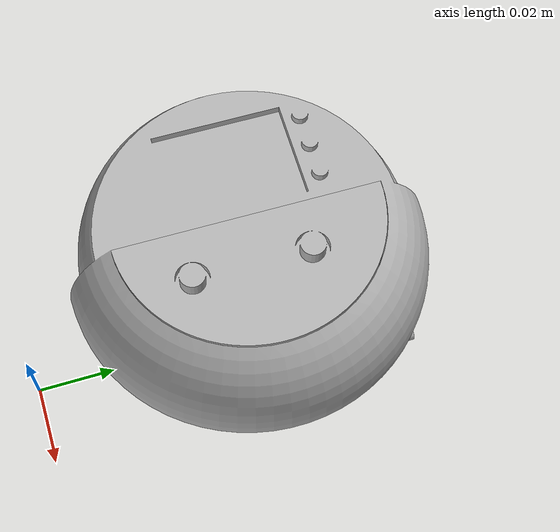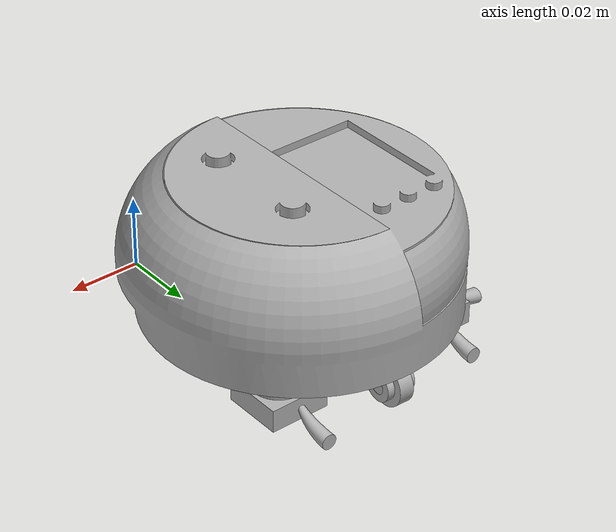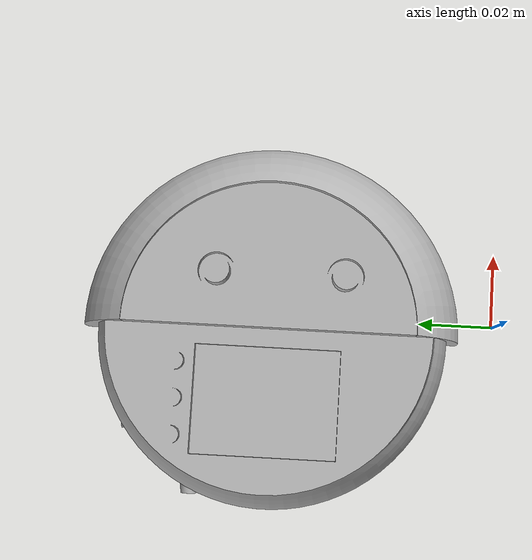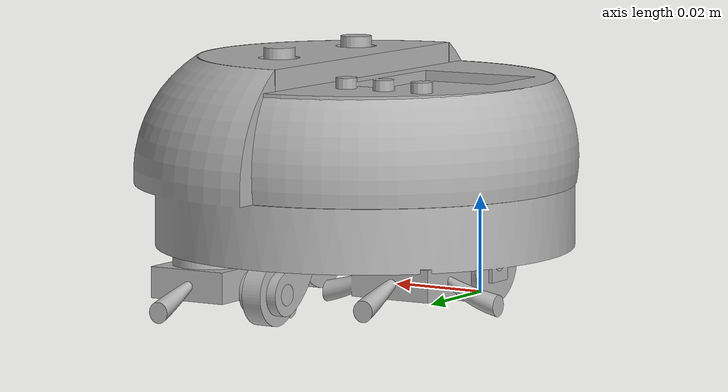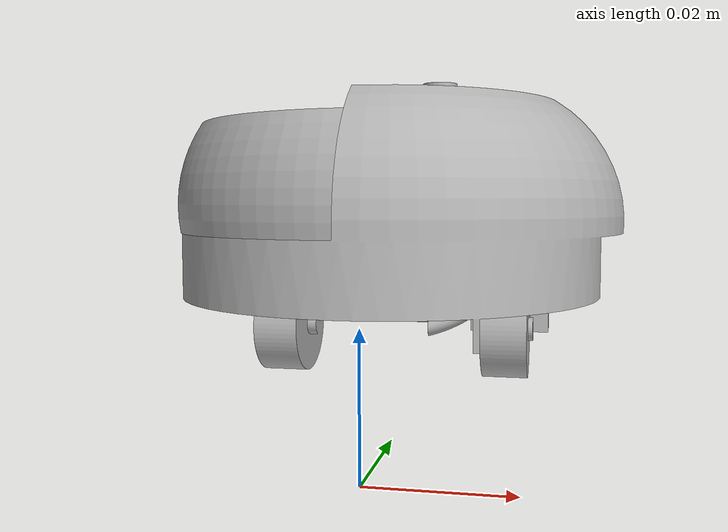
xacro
<?xml version="1.0" ?>
<robot name="automated" xmlns:xacro="http://www.ros.org/wiki/xacro">

<xacro:include filename="$(find automated_description)/urdf/materials.xacro" />
<xacro:include filename="$(find automated_description)/urdf/automated.trans" />
<xacro:include filename="$(find automated_description)/urdf/automated.gazebo" />
<link name="base_link">
  <inertial>
    <origin rpy="0 0 0" xyz="-0.002260090657862094 0.05793365430294957 0.030621354736393203"/>
    <mass value="0.6770784513234185"/>
    <inertia ixx="0.000389" ixy="-6e-06" ixz="-2.3e-05" iyy="0.000371" iyz="-6e-06" izz="0.00064"/>
  </inertial>
  <visual>
    <origin rpy="0 0 0" xyz="0 0 0"/>
    <geometry>
      <mesh filename="package://automated_description/meshes/base_link.stl" scale="0.001 0.001 0.001"/>
    </geometry>
    <material name="silver"/>
  </visual>
  <collision>
    <origin rpy="0 0 0" xyz="0 0 0"/>
    <geometry>
      <mesh filename="package://automated_description/meshes/base_link.stl" scale="0.001 0.001 0.001"/>
    </geometry>
  </collision>
</link>

<link name="Component58_1_1_1_1">
  <inertial>
    <origin rpy="0 0 0" xyz="4.780941092805916e-05 0.001919665752716973 -0.00995865257547859"/>
    <mass value="0.004210048380162323"/>
    <inertia ixx="0.0" ixy="-0.0" ixz="0.0" iyy="0.0" iyz="0.0" izz="0.0"/>
  </inertial>
  <visual>
    <origin rpy="0 0 0" xyz="0.007764 -0.086809 -0.0276"/>
    <geometry>
      <mesh filename="package://automated_description/meshes/Component58_1_1_1_1.stl" scale="0.001 0.001 0.001"/>
    </geometry>
    <material name="silver"/>
  </visual>
  <collision>
    <origin rpy="0 0 0" xyz="0.007764 -0.086809 -0.0276"/>
    <geometry>
      <mesh filename="package://automated_description/meshes/Component58_1_1_1_1.stl" scale="0.001 0.001 0.001"/>
    </geometry>
  </collision>
</link>

<link name="Component59_1_1_1_1">
  <inertial>
    <origin rpy="0 0 0" xyz="0.0039990430726547935 -0.0001005646685130479 1.8572263411377465e-07"/>
    <mass value="0.003945840372937571"/>
    <inertia ixx="0.0" ixy="-0.0" ixz="-0.0" iyy="0.0" iyz="0.0" izz="0.0"/>
  </inertial>
  <visual>
    <origin rpy="0 0 0" xyz="0.011615 -0.092815 -0.01295"/>
    <geometry>
      <mesh filename="package://automated_description/meshes/Component59_1_1_1_1.stl" scale="0.001 0.001 0.001"/>
    </geometry>
    <material name="silver"/>
  </visual>
  <collision>
    <origin rpy="0 0 0" xyz="0.011615 -0.092815 -0.01295"/>
    <geometry>
      <mesh filename="package://automated_description/meshes/Component59_1_1_1_1.stl" scale="0.001 0.001 0.001"/>
    </geometry>
  </collision>
</link>

<link name="Component65_1_1_1_1">
  <inertial>
    <origin rpy="0 0 0" xyz="0.005370003801277046 6.258215612398033e-10 2.0861626141843725e-10"/>
    <mass value="0.013360062663068094"/>
    <inertia ixx="0.0" ixy="-0.0" ixz="0.0" iyy="0.0" iyz="0.0" izz="0.0"/>
  </inertial>
  <visual>
    <origin rpy="0 0 0" xyz="-0.010236 -0.042 -0.014"/>
    <geometry>
      <mesh filename="package://automated_description/meshes/Component65_1_1_1_1.stl" scale="0.001 0.001 0.001"/>
    </geometry>
    <material name="silver"/>
  </visual>
  <collision>
    <origin rpy="0 0 0" xyz="-0.010236 -0.042 -0.014"/>
    <geometry>
      <mesh filename="package://automated_description/meshes/Component65_1_1_1_1.stl" scale="0.001 0.001 0.001"/>
    </geometry>
  </collision>
</link>

<link name="Component64_1_1_1_1">
  <inertial>
    <origin rpy="0 0 0" xyz="0.004629072990882242 1.7943237050344063e-07 -1.214306433183765e-17"/>
    <mass value="0.013360062663068028"/>
    <inertia ixx="0.0" ixy="0.0" ixz="0.0" iyy="0.0" iyz="-0.0" izz="0.0"/>
  </inertial>
  <visual>
    <origin rpy="0 0 0" xyz="0.027764 -0.041809 -0.014"/>
    <geometry>
      <mesh filename="package://automated_description/meshes/Component64_1_1_1_1.stl" scale="0.001 0.001 0.001"/>
    </geometry>
    <material name="silver"/>
  </visual>
  <collision>
    <origin rpy="0 0 0" xyz="0.027764 -0.041809 -0.014"/>
    <geometry>
      <mesh filename="package://automated_description/meshes/Component64_1_1_1_1.stl" scale="0.001 0.001 0.001"/>
    </geometry>
  </collision>
</link>

<link name="Component68_1_1_1_1">
  <inertial>
    <origin rpy="0 0 0" xyz="-1.4728177826130867e-05 6.969358953320959e-06 -0.008054423476504292"/>
    <mass value="0.023480762920581627"/>
    <inertia ixx="1e-06" ixy="0.0" ixz="-0.0" iyy="1e-06" iyz="0.0" izz="1e-06"/>
  </inertial>
  <visual>
    <origin rpy="0 0 0" xyz="0.029764 -0.078809 -0.026"/>
    <geometry>
      <mesh filename="package://automated_description/meshes/Component68_1_1_1_1.stl" scale="0.001 0.001 0.001"/>
    </geometry>
    <material name="silver"/>
  </visual>
  <collision>
    <origin rpy="0 0 0" xyz="0.029764 -0.078809 -0.026"/>
    <geometry>
      <mesh filename="package://automated_description/meshes/Component68_1_1_1_1.stl" scale="0.001 0.001 0.001"/>
    </geometry>
  </collision>
</link>

<link name="Component69_1_1_1_1">
  <inertial>
    <origin rpy="0 0 0" xyz="-0.0004254489576173866 5.723375892774385e-06 -0.007913406502636878"/>
    <mass value="0.02280255927051666"/>
    <inertia ixx="1e-06" ixy="0.0" ixz="-0.0" iyy="1e-06" iyz="0.0" izz="1e-06"/>
  </inertial>
  <visual>
    <origin rpy="0 0 0" xyz="-0.014596 -0.078809 -0.022"/>
    <geometry>
      <mesh filename="package://automated_description/meshes/Component69_1_1_1_1.stl" scale="0.001 0.001 0.001"/>
    </geometry>
    <material name="silver"/>
  </visual>
  <collision>
    <origin rpy="0 0 0" xyz="-0.014596 -0.078809 -0.022"/>
    <geometry>
      <mesh filename="package://automated_description/meshes/Component69_1_1_1_1.stl" scale="0.001 0.001 0.001"/>
    </geometry>
  </collision>
</link>

<link name="Component67_1_1_1_1">
  <inertial>
    <origin rpy="0 0 0" xyz="-0.02416053068101002 -0.03899982056769254 -0.003976280144688531"/>
    <mass value="0.06255119221528634"/>
    <inertia ixx="4.7e-05" ixy="-0.0" ixz="-0.0" iyy="1e-05" iyz="-0.0" izz="5.4e-05"/>
  </inertial>
  <visual>
    <origin rpy="0 0 0" xyz="0.007764 -0.097409 -0.042"/>
    <geometry>
      <mesh filename="package://automated_description/meshes/Component67_1_1_1_1.stl" scale="0.001 0.001 0.001"/>
    </geometry>
    <material name="silver"/>
  </visual>
  <collision>
    <origin rpy="0 0 0" xyz="0.007764 -0.097409 -0.042"/>
    <geometry>
      <mesh filename="package://automated_description/meshes/Component67_1_1_1_1.stl" scale="0.001 0.001 0.001"/>
    </geometry>
  </collision>
</link>

<link name="Component66_1_1_1_1">
  <inertial>
    <origin rpy="0 0 0" xyz="0.013396446468846787 -8.032706838141668e-06 0.002039590369300376"/>
    <mass value="0.04983333627138506"/>
    <inertia ixx="1.3e-05" ixy="-0.0" ixz="0.0" iyy="4e-06" iyz="0.0" izz="1.6e-05"/>
  </inertial>
  <visual>
    <origin rpy="0 0 0" xyz="0.007764 -0.058809 -0.05"/>
    <geometry>
      <mesh filename="package://automated_description/meshes/Component66_1_1_1_1.stl" scale="0.001 0.001 0.001"/>
    </geometry>
    <material name="silver"/>
  </visual>
  <collision>
    <origin rpy="0 0 0" xyz="0.007764 -0.058809 -0.05"/>
    <geometry>
      <mesh filename="package://automated_description/meshes/Component66_1_1_1_1.stl" scale="0.001 0.001 0.001"/>
    </geometry>
  </collision>
</link>

<joint name="Rev17" type="continuous">
  <origin rpy="0 0 0" xyz="-0.007764 0.086809 0.0276"/>
  <parent link="base_link"/>
  <child link="Component58_1_1_1_1"/>
  <axis xyz="0.0 0.0 -1.0"/>
</joint>

<joint name="Rev18" type="continuous">
  <origin rpy="0 0 0" xyz="-0.003851 0.006006 -0.01465"/>
  <parent link="Component58_1_1_1_1"/>
  <child link="Component59_1_1_1_1"/>
  <axis xyz="-0.999684 0.02514 0.0"/>
</joint>

<joint name="Rev19" type="continuous">
  <origin rpy="0 0 0" xyz="0.010236 0.042 0.014"/>
  <parent link="base_link"/>
  <child link="Component65_1_1_1_1"/>
  <axis xyz="-1.0 -0.0 -0.0"/>
</joint>

<joint name="Rev20" type="continuous">
  <origin rpy="0 0 0" xyz="-0.027764 0.041809 0.014"/>
  <parent link="base_link"/>
  <child link="Component64_1_1_1_1"/>
  <axis xyz="-1.0 -0.0 -0.0"/>
</joint>

<joint name="Rev21" type="continuous">
  <origin rpy="0 0 0" xyz="-0.029764 0.078809 0.026"/>
  <parent link="base_link"/>
  <child link="Component68_1_1_1_1"/>
  <axis xyz="0.0 0.0 -1.0"/>
</joint>

<joint name="Rev22" type="continuous">
  <origin rpy="0 0 0" xyz="0.014596 0.078809 0.022"/>
  <parent link="base_link"/>
  <child link="Component69_1_1_1_1"/>
  <axis xyz="0.0 0.0 -1.0"/>
</joint>

<joint name="Rigid23" type="fixed">
  <origin rpy="0 0 0" xyz="-0.007764 0.097409 0.042"/>
  <parent link="base_link"/>
  <child link="Component67_1_1_1_1"/>
</joint>

<joint name="Rigid24" type="fixed">
  <origin rpy="0 0 0" xyz="-0.007764 0.058809 0.05"/>
  <parent link="base_link"/>
  <child link="Component66_1_1_1_1"/>
</joint>

</robot>

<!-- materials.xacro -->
<robot name="automated" xmlns:xacro="http://www.ros.org/wiki/xacro" >

<material name="silver">
  <color rgba="0.700 0.700 0.700 1.000"/>
</material>

</robot>

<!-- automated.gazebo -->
<robot name="automated" xmlns:xacro="http://www.ros.org/wiki/xacro" >

<xacro:property name="body_color" value="Gazebo/Silver" />

<gazebo>
  <plugin filename="libgazebo_ros_control.so" name="control"/>
</gazebo>
<gazebo reference="base_link">
  <material>${body_color}</material>
  <mu1>0.2</mu1>
  <mu2>0.2</mu2>
  <selfCollide>true</selfCollide>
  <gravity>true</gravity>
</gazebo>

<gazebo reference="Component58_1_1_1_1">
  <material>${body_color}</material>
  <mu1>0.2</mu1>
  <mu2>0.2</mu2>
  <selfCollide>true</selfCollide>
</gazebo>

<gazebo reference="Component59_1_1_1_1">
  <material>${body_color}</material>
  <mu1>0.2</mu1>
  <mu2>0.2</mu2>
  <selfCollide>true</selfCollide>
</gazebo>

<gazebo reference="Component65_1_1_1_1">
  <material>${body_color}</material>
  <mu1>0.2</mu1>
  <mu2>0.2</mu2>
  <selfCollide>true</selfCollide>
</gazebo>

<gazebo reference="Component64_1_1_1_1">
  <material>${body_color}</material>
  <mu1>0.2</mu1>
  <mu2>0.2</mu2>
  <selfCollide>true</selfCollide>
</gazebo>

<gazebo reference="Component68_1_1_1_1">
  <material>${body_color}</material>
  <mu1>0.2</mu1>
  <mu2>0.2</mu2>
  <selfCollide>true</selfCollide>
</gazebo>

<gazebo reference="Component69_1_1_1_1">
  <material>${body_color}</material>
  <mu1>0.2</mu1>
  <mu2>0.2</mu2>
  <selfCollide>true</selfCollide>
</gazebo>

<gazebo reference="Component67_1_1_1_1">
  <material>${body_color}</material>
  <mu1>0.2</mu1>
  <mu2>0.2</mu2>
  <selfCollide>true</selfCollide>
</gazebo>

<gazebo reference="Component66_1_1_1_1">
  <material>${body_color}</material>
  <mu1>0.2</mu1>
  <mu2>0.2</mu2>
  <selfCollide>true</selfCollide>
</gazebo>

</robot>
